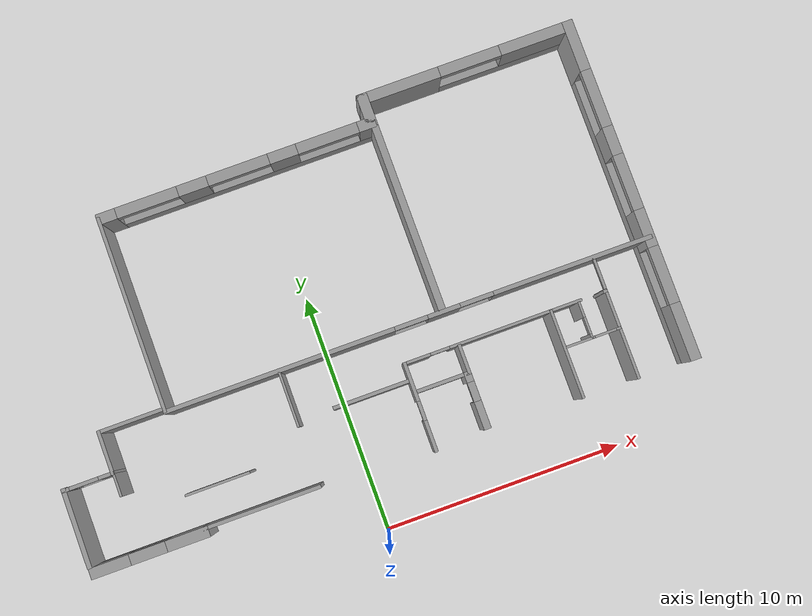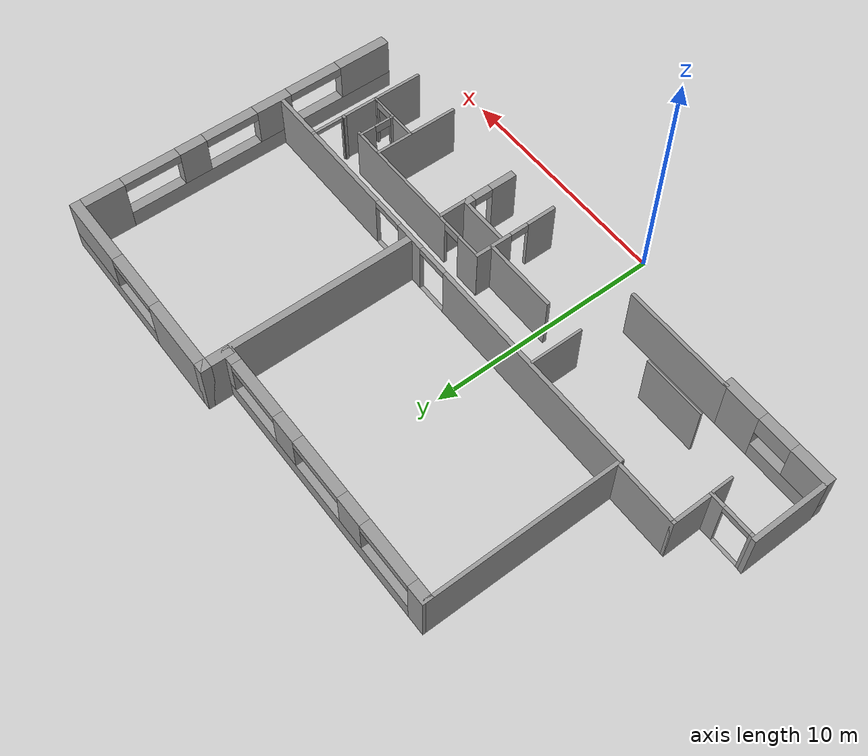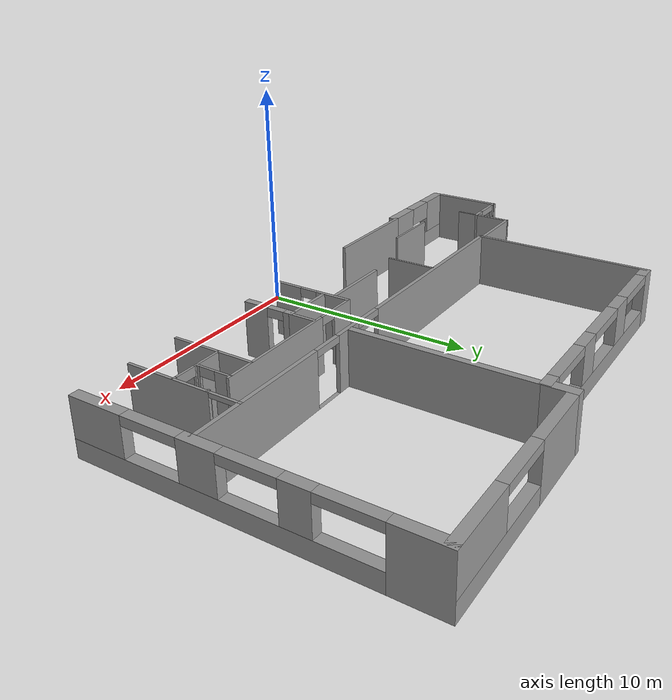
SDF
<sdf version="1.5">
 <model name="CentroPiaggio">
  <pose>1.2255 -0.6475 0 0 -0 0</pose>
  <link name="Wall_111">
   <pose>-2.0571 16.2258 0 0 -0 0</pose>
   <visual name="Wall_111_Visual_0">
    <pose>-5.4987 0 1.25 0 -0 0</pose>
    <geometry><box><size>0.802608 0.45 2.5</size></box></geometry>
    <material>
     <script><uri>file://media/materials/scripts/gazebo.material</uri><name>Gazebo/Grey</name></script>
     <ambient>1 1 1 1</ambient>
    </material>
   </visual>
   <collision name="Wall_111_Collision_0">
    <geometry><box><size>0.802608 0.45 2.5</size></box></geometry>
    <pose>-5.4987 0 1.25 0 -0 0</pose>
   </collision>
   <visual name="Wall_111_Visual_1">
    <pose>0.401304 0 0.4 0 -0 0</pose>
    <geometry><box><size>10.9974 0.45 0.8</size></box></geometry>
    <material>
     <script><uri>file://media/materials/scripts/gazebo.material</uri><name>Gazebo/Grey</name></script>
     <ambient>1 1 1 1</ambient>
    </material>
   </visual>
   <collision name="Wall_111_Collision_1">
    <geometry><box><size>10.9974 0.45 0.8</size></box></geometry>
    <pose>0.401304 0 0.4 0 -0 0</pose>
   </collision>
   <visual name="Wall_111_Visual_2">
    <pose>-1.86987 0 1.65 0 -0 0</pose>
    <geometry><box><size>1.25505 0.45 1.7</size></box></geometry>
    <material>
     <script><uri>file://media/materials/scripts/gazebo.material</uri><name>Gazebo/Grey</name></script>
     <ambient>1 1 1 1</ambient>
    </material>
   </visual>
   <collision name="Wall_111_Collision_2">
    <geometry><box><size>1.25505 0.45 1.7</size></box></geometry>
    <pose>-1.86987 0 1.65 0 -0 0</pose>
   </collision>
   <visual name="Wall_111_Visual_3">
    <pose>1.95631 0 1.65 0 -0 0</pose>
    <geometry><box><size>1.19731 0.45 1.7</size></box></geometry>
    <material>
     <script><uri>file://media/materials/scripts/gazebo.material</uri><name>Gazebo/Grey</name></script>
     <ambient>1 1 1 1</ambient>
    </material>
   </visual>
   <collision name="Wall_111_Collision_3">
    <geometry><box><size>1.19731 0.45 1.7</size></box></geometry>
    <pose>1.95631 0 1.65 0 -0 0</pose>
   </collision>
   <visual name="Wall_111_Visual_4">
    <pose>5.52748 0 1.65 0 -0 0</pose>
    <geometry><box><size>0.745034 0.45 1.7</size></box></geometry>
    <material>
     <script><uri>file://media/materials/scripts/gazebo.material</uri><name>Gazebo/Grey</name></script>
     <ambient>1 1 1 1</ambient>
    </material>
   </visual>
   <collision name="Wall_111_Collision_4">
    <geometry><box><size>0.745034 0.45 1.7</size></box></geometry>
    <pose>5.52748 0 1.65 0 -0 0</pose>
   </collision>
   <visual name="Wall_111_Visual_5">
    <pose>-3.79739 0 2.3 0 -0 0</pose>
    <geometry><box><size>2.6 0.45 0.4</size></box></geometry>
    <material>
     <script><uri>file://media/materials/scripts/gazebo.material</uri><name>Gazebo/Grey</name></script>
     <ambient>1 1 1 1</ambient>
    </material>
   </visual>
   <collision name="Wall_111_Collision_5">
    <geometry><box><size>2.6 0.45 0.4</size></box></geometry>
    <pose>-3.79739 0 2.3 0 -0 0</pose>
   </collision>
   <visual name="Wall_111_Visual_6">
    <pose>0.057654 0 2.3 0 -0 0</pose>
    <geometry><box><size>2.6 0.45 0.4</size></box></geometry>
    <material>
     <script><uri>file://media/materials/scripts/gazebo.material</uri><name>Gazebo/Grey</name></script>
     <ambient>1 1 1 1</ambient>
    </material>
   </visual>
   <collision name="Wall_111_Collision_6">
    <geometry><box><size>2.6 0.45 0.4</size></box></geometry>
    <pose>0.057654 0 2.3 0 -0 0</pose>
   </collision>
   <visual name="Wall_111_Visual_7">
    <pose>3.85497 0 2.3 0 -0 0</pose>
    <geometry><box><size>2.6 0.45 0.4</size></box></geometry>
    <material>
     <script><uri>file://media/materials/scripts/gazebo.material</uri><name>Gazebo/Grey</name></script>
     <ambient>1 1 1 1</ambient>
    </material>
   </visual>
   <collision name="Wall_111_Collision_7">
    <geometry><box><size>2.6 0.45 0.4</size></box></geometry>
    <pose>3.85497 0 2.3 0 -0 0</pose>
   </collision>
  </link>
  <link name="Wall_115">
   <collision name="Wall_115_Collision">
    <geometry><box><size>0.95 0.1 2.5</size></box></geometry>
    <pose>0 0 1.25 0 -0 0</pose>
   </collision>
   <visual name="Wall_115_Visual">
    <pose>0 0 1.25 0 -0 0</pose>
    <geometry><box><size>0.95 0.1 2.5</size></box></geometry>
    <material>
     <script><uri>file://media/materials/scripts/gazebo.material</uri><name>Gazebo/Grey</name></script>
     <ambient>1 1 1 1</ambient>
    </material>
   </visual>
   <pose>-10.5749 6.04761 0 0 0 -1.5708</pose>
  </link>
  <link name="Wall_118">
   <collision name="Wall_118_Collision">
    <geometry><box><size>2.7 0.1 2.5</size></box></geometry>
    <pose>0 0 1.25 0 -0 0</pose>
   </collision>
   <visual name="Wall_118_Visual">
    <pose>0 0 1.25 0 -0 0</pose>
    <geometry><box><size>2.7 0.1 2.5</size></box></geometry>
    <material>
     <script><uri>file://media/materials/scripts/gazebo.material</uri><name>Gazebo/Grey</name></script>
     <ambient>1 1 1 1</ambient>
    </material>
   </visual>
   <pose>-6.8715 4.75758 0 0 -0 0</pose>
  </link>
  <link name="Wall_120">
   <collision name="Wall_120_Collision">
    <geometry><box><size>2.3 0.1 2.5</size></box></geometry>
    <pose>0 0 1.25 0 -0 0</pose>
   </collision>
   <visual name="Wall_120_Visual">
    <pose>0 0 1.25 0 -0 0</pose>
    <geometry><box><size>2.3 0.1 2.5</size></box></geometry>
    <material>
     <script><uri>file://media/materials/scripts/gazebo.material</uri><name>Gazebo/Grey</name></script>
     <ambient>1 1 1 1</ambient>
    </material>
   </visual>
   <pose>-3.14357 6.91583 0 0 0 -1.5708</pose>
  </link>
  <link name="Wall_13">
   <collision name="Wall_13_Collision">
    <geometry><box><size>1.4 0.45 2.5</size></box></geometry>
    <pose>0 0 1.25 0 -0 0</pose>
   </collision>
   <visual name="Wall_13_Visual">
    <pose>0 0 1.25 0 -0 0</pose>
    <geometry><box><size>1.4 0.45 2.5</size></box></geometry>
    <material>
     <script><uri>file://media/materials/scripts/gazebo.material</uri><name>Gazebo/Grey</name></script>
     <ambient>1 1 1 1</ambient>
    </material>
   </visual>
   <pose>3.6745 16.7645 0 0 0 -1.5708</pose>
  </link>
  <link name="Wall_15">
   <pose>8.086 17.2395 0 0 -0 0</pose>
   <visual name="Wall_15_Visual_0">
    <pose>-2.89216 0 1.25 0 -0 0</pose>
    <geometry><box><size>3.48868 0.45 2.5</size></box></geometry>
    <material>
     <script><uri>file://media/materials/scripts/gazebo.material</uri><name>Gazebo/Grey</name></script>
     <ambient>1 1 1 1</ambient>
    </material>
   </visual>
   <collision name="Wall_15_Collision_0">
    <geometry><box><size>3.48868 0.45 2.5</size></box></geometry>
    <pose>-2.89216 0 1.25 0 -0 0</pose>
   </collision>
   <visual name="Wall_15_Visual_1">
    <pose>1.74434 0 0.4 0 -0 0</pose>
    <geometry><box><size>5.78432 0.45 0.8</size></box></geometry>
    <material>
     <script><uri>file://media/materials/scripts/gazebo.material</uri><name>Gazebo/Grey</name></script>
     <ambient>1 1 1 1</ambient>
    </material>
   </visual>
   <collision name="Wall_15_Collision_1">
    <geometry><box><size>5.78432 0.45 0.8</size></box></geometry>
    <pose>1.74434 0 0.4 0 -0 0</pose>
   </collision>
   <visual name="Wall_15_Visual_2">
    <pose>3.04434 0 1.65 0 -0 0</pose>
    <geometry><box><size>3.18432 0.45 1.7</size></box></geometry>
    <material>
     <script><uri>file://media/materials/scripts/gazebo.material</uri><name>Gazebo/Grey</name></script>
     <ambient>1 1 1 1</ambient>
    </material>
   </visual>
   <collision name="Wall_15_Collision_2">
    <geometry><box><size>3.18432 0.45 1.7</size></box></geometry>
    <pose>3.04434 0 1.65 0 -0 0</pose>
   </collision>
   <visual name="Wall_15_Visual_3">
    <pose>0.152181 0 2.3 0 -0 0</pose>
    <geometry><box><size>2.6 0.45 0.4</size></box></geometry>
    <material>
     <script><uri>file://media/materials/scripts/gazebo.material</uri><name>Gazebo/Grey</name></script>
     <ambient>1 1 1 1</ambient>
    </material>
   </visual>
   <collision name="Wall_15_Collision_3">
    <geometry><box><size>2.6 0.45 0.4</size></box></geometry>
    <pose>0.152181 0 2.3 0 -0 0</pose>
   </collision>
  </link>
  <link name="Wall_17">
   <pose>12.4975 10.1935 0 0 0 -1.5708</pose>
   <visual name="Wall_17_Visual_0">
    <pose>-6.19497 0 1.25 0 -0 0</pose>
    <geometry><box><size>2.15205 0.45 2.5</size></box></geometry>
    <material>
     <script><uri>file://media/materials/scripts/gazebo.material</uri><name>Gazebo/Grey</name></script>
     <ambient>1 1 1 1</ambient>
    </material>
   </visual>
   <collision name="Wall_17_Collision_0">
    <geometry><box><size>2.15205 0.45 2.5</size></box></geometry>
    <pose>-6.19497 0 1.25 0 -0 0</pose>
   </collision>
   <visual name="Wall_17_Visual_1">
    <pose>1.07603 0 0.4 0 -0 0</pose>
    <geometry><box><size>12.3899 0.45 0.8</size></box></geometry>
    <material>
     <script><uri>file://media/materials/scripts/gazebo.material</uri><name>Gazebo/Grey</name></script>
     <ambient>1 1 1 1</ambient>
    </material>
   </visual>
   <collision name="Wall_17_Collision_1">
    <geometry><box><size>12.3899 0.45 0.8</size></box></geometry>
    <pose>1.07603 0 0.4 0 -0 0</pose>
   </collision>
   <visual name="Wall_17_Visual_2">
    <pose>-2.06417 0 1.65 0 -0 0</pose>
    <geometry><box><size>1.20956 0.45 1.7</size></box></geometry>
    <material>
     <script><uri>file://media/materials/scripts/gazebo.material</uri><name>Gazebo/Grey</name></script>
     <ambient>1 1 1 1</ambient>
    </material>
   </visual>
   <collision name="Wall_17_Collision_2">
    <geometry><box><size>1.20956 0.45 1.7</size></box></geometry>
    <pose>-2.06417 0 1.65 0 -0 0</pose>
   </collision>
   <visual name="Wall_17_Visual_3">
    <pose>1.68935 0 1.65 0 -0 0</pose>
    <geometry><box><size>1.59598 0.45 1.7</size></box></geometry>
    <material>
     <script><uri>file://media/materials/scripts/gazebo.material</uri><name>Gazebo/Grey</name></script>
     <ambient>1 1 1 1</ambient>
    </material>
   </visual>
   <collision name="Wall_17_Collision_3">
    <geometry><box><size>1.59598 0.45 1.7</size></box></geometry>
    <pose>1.68935 0 1.65 0 -0 0</pose>
   </collision>
   <visual name="Wall_17_Visual_4">
    <pose>6.07917 0 1.65 0 -0 0</pose>
    <geometry><box><size>2.38366 0.45 1.7</size></box></geometry>
    <material>
     <script><uri>file://media/materials/scripts/gazebo.material</uri><name>Gazebo/Grey</name></script>
     <ambient>1 1 1 1</ambient>
    </material>
   </visual>
   <collision name="Wall_17_Collision_4">
    <geometry><box><size>2.38366 0.45 1.7</size></box></geometry>
    <pose>6.07917 0 1.65 0 -0 0</pose>
   </collision>
   <visual name="Wall_17_Visual_5">
    <pose>-3.89395 0 2.3 0 -0 0</pose>
    <geometry><box><size>2.45 0.45 0.4</size></box></geometry>
    <material>
     <script><uri>file://media/materials/scripts/gazebo.material</uri><name>Gazebo/Grey</name></script>
     <ambient>1 1 1 1</ambient>
    </material>
   </visual>
   <collision name="Wall_17_Collision_5">
    <geometry><box><size>2.45 0.45 0.4</size></box></geometry>
    <pose>-3.89395 0 2.3 0 -0 0</pose>
   </collision>
   <visual name="Wall_17_Visual_6">
    <pose>-0.284012 0 2.3 0 -0 0</pose>
    <geometry><box><size>2.35075 0.45 0.4</size></box></geometry>
    <material>
     <script><uri>file://media/materials/scripts/gazebo.material</uri><name>Gazebo/Grey</name></script>
     <ambient>1 1 1 1</ambient>
    </material>
   </visual>
   <collision name="Wall_17_Collision_6">
    <geometry><box><size>2.35075 0.45 0.4</size></box></geometry>
    <pose>-0.284012 0 2.3 0 -0 0</pose>
   </collision>
   <visual name="Wall_17_Visual_7">
    <pose>3.68735 0 2.3 0 -0 0</pose>
    <geometry><box><size>2.4 0.45 0.4</size></box></geometry>
    <material>
     <script><uri>file://media/materials/scripts/gazebo.material</uri><name>Gazebo/Grey</name></script>
     <ambient>1 1 1 1</ambient>
    </material>
   </visual>
   <collision name="Wall_17_Collision_7">
    <geometry><box><size>2.4 0.45 0.4</size></box></geometry>
    <pose>3.68735 0 2.3 0 -0 0</pose>
   </collision>
  </link>
  <link name="Wall_31">
   <pose>-10.2415 3.1475 0 0 -0 3.14159</pose>
   <visual name="Wall_31_Visual_0">
    <pose>-1.57559 0 1.25 0 -0 0</pose>
    <geometry><box><size>1.76683 0.45 2.5</size></box></geometry>
    <material>
     <script><uri>file://media/materials/scripts/gazebo.material</uri><name>Gazebo/Grey</name></script>
     <ambient>1 1 1 1</ambient>
    </material>
   </visual>
   <collision name="Wall_31_Collision_0">
    <geometry><box><size>1.76683 0.45 2.5</size></box></geometry>
    <pose>-1.57559 0 1.25 0 -0 0</pose>
   </collision>
   <visual name="Wall_31_Visual_1">
    <pose>0.883413 0 0.4 0 -0 0</pose>
    <geometry><box><size>3.15117 0.45 0.8</size></box></geometry>
    <material>
     <script><uri>file://media/materials/scripts/gazebo.material</uri><name>Gazebo/Grey</name></script>
     <ambient>1 1 1 1</ambient>
    </material>
   </visual>
   <collision name="Wall_31_Collision_1">
    <geometry><box><size>3.15117 0.45 0.8</size></box></geometry>
    <pose>0.883413 0 0.4 0 -0 0</pose>
   </collision>
   <visual name="Wall_31_Visual_2">
    <pose>1.63341 0 1.65 0 -0 0</pose>
    <geometry><box><size>1.65117 0.45 1.7</size></box></geometry>
    <material>
     <script><uri>file://media/materials/scripts/gazebo.material</uri><name>Gazebo/Grey</name></script>
     <ambient>1 1 1 1</ambient>
    </material>
   </visual>
   <collision name="Wall_31_Collision_2">
    <geometry><box><size>1.65117 0.45 1.7</size></box></geometry>
    <pose>1.63341 0 1.65 0 -0 0</pose>
   </collision>
   <visual name="Wall_31_Visual_3">
    <pose>0.057827 0 2.05 0 -0 0</pose>
    <geometry><box><size>1.5 0.45 0.9</size></box></geometry>
    <material>
     <script><uri>file://media/materials/scripts/gazebo.material</uri><name>Gazebo/Grey</name></script>
     <ambient>1 1 1 1</ambient>
    </material>
   </visual>
   <collision name="Wall_31_Collision_3">
    <geometry><box><size>1.5 0.45 0.9</size></box></geometry>
    <pose>0.057827 0 2.05 0 -0 0</pose>
   </collision>
  </link>
  <link name="Wall_34">
   <collision name="Wall_34_Collision">
    <geometry><box><size>3.29965 0.2 2.5</size></box></geometry>
    <pose>0 0 1.25 0 -0 0</pose>
   </collision>
   <visual name="Wall_34_Visual">
    <pose>0 0 1.25 0 -0 0</pose>
    <geometry><box><size>3.29965 0.2 2.5</size></box></geometry>
    <material>
     <script><uri>file://media/materials/scripts/gazebo.material</uri><name>Gazebo/Grey</name></script>
     <ambient>1 1 1 1</ambient>
    </material>
   </visual>
   <pose>-12.6225 5.0035 0 0 0 -1.5708</pose>
  </link>
  <link name="Wall_36">
   <pose>-11.6115 6.5535 0 0 -0 0</pose>
   <visual name="Wall_36_Visual_0">
    <pose>-0.934198 0 1.25 0 -0 0</pose>
    <geometry><box><size>0.303882 0.15 2.5</size></box></geometry>
    <material>
     <script><uri>file://media/materials/scripts/gazebo.material</uri><name>Gazebo/Grey</name></script>
     <ambient>1 1 1 1</ambient>
    </material>
   </visual>
   <collision name="Wall_36_Collision_0">
    <geometry><box><size>0.303882 0.15 2.5</size></box></geometry>
    <pose>-0.934198 0 1.25 0 -0 0</pose>
   </collision>
   <visual name="Wall_36_Visual_1">
    <pose>0.751941 0 1.25 0 -0 0</pose>
    <geometry><box><size>0.668397 0.15 2.5</size></box></geometry>
    <material>
     <script><uri>file://media/materials/scripts/gazebo.material</uri><name>Gazebo/Grey</name></script>
     <ambient>1 1 1 1</ambient>
    </material>
   </visual>
   <collision name="Wall_36_Collision_1">
    <geometry><box><size>0.668397 0.15 2.5</size></box></geometry>
    <pose>0.751941 0 1.25 0 -0 0</pose>
   </collision>
   <visual name="Wall_36_Visual_2">
    <pose>-0.182258 0 0 0 -0 0</pose>
    <geometry><box><size>1.2 0.15 0</size></box></geometry>
    <material>
     <script><uri>file://media/materials/scripts/gazebo.material</uri><name>Gazebo/Grey</name></script>
     <ambient>1 1 1 1</ambient>
    </material>
   </visual>
   <collision name="Wall_36_Collision_2">
    <geometry><box><size>1.2 0.15 0</size></box></geometry>
    <pose>-0.182258 0 0 0 -0 0</pose>
   </collision>
   <visual name="Wall_36_Visual_3">
    <pose>-0.182258 0 2.35 0 -0 0</pose>
    <geometry><box><size>1.2 0.15 0.3</size></box></geometry>
    <material>
     <script><uri>file://media/materials/scripts/gazebo.material</uri><name>Gazebo/Grey</name></script>
     <ambient>1 1 1 1</ambient>
    </material>
   </visual>
   <collision name="Wall_36_Collision_3">
    <geometry><box><size>1.2 0.15 0.3</size></box></geometry>
    <pose>-0.182258 0 2.35 0 -0 0</pose>
   </collision>
  </link>
  <link name="Wall_39">
   <collision name="Wall_39_Collision">
    <geometry><box><size>1.844 0.15 2.5</size></box></geometry>
    <pose>0 0 1.25 0 -0 0</pose>
   </collision>
   <visual name="Wall_39_Visual">
    <pose>0 0 1.25 0 -0 0</pose>
    <geometry><box><size>1.844 0.15 2.5</size></box></geometry>
    <material>
     <script><uri>file://media/materials/scripts/gazebo.material</uri><name>Gazebo/Grey</name></script>
     <ambient>1 1 1 1</ambient>
    </material>
   </visual>
   <pose>-10.6005 7.4005 0 0 -0 1.5708</pose>
  </link>
  <link name="Wall_42">
   <collision name="Wall_42_Collision">
    <geometry><box><size>2.725 0.15 2.5</size></box></geometry>
    <pose>0 0 1.25 0 -0 0</pose>
   </collision>
   <visual name="Wall_42_Visual">
    <pose>0 0 1.25 0 -0 0</pose>
    <geometry><box><size>2.725 0.15 2.5</size></box></geometry>
    <material>
     <script><uri>file://media/materials/scripts/gazebo.material</uri><name>Gazebo/Grey</name></script>
     <ambient>1 1 1 1</ambient>
    </material>
   </visual>
   <pose>-9.313 8.2475 0 0 -0 0</pose>
  </link>
  <link name="Wall_46">
   <collision name="Wall_46_Collision">
    <geometry><box><size>8.25 0.15 2.5</size></box></geometry>
    <pose>0 0 1.25 0 -0 0</pose>
   </collision>
   <visual name="Wall_46_Visual">
    <pose>0 0 1.25 0 -0 0</pose>
    <geometry><box><size>8.25 0.15 2.5</size></box></geometry>
    <material>
     <script><uri>file://media/materials/scripts/gazebo.material</uri><name>Gazebo/Grey</name></script>
     <ambient>1 1 1 1</ambient>
    </material>
   </visual>
   <pose>-7.88344 12.1974 0 0 0 -1.5708</pose>
  </link>
  <link name="Wall_48">
   <collision name="Wall_48_Collision">
    <geometry><box><size>7.9 0.3 2.5</size></box></geometry>
    <pose>0 0 1.25 0 -0 0</pose>
   </collision>
   <visual name="Wall_48_Visual">
    <pose>0 0 1.25 0 -0 0</pose>
    <geometry><box><size>7.9 0.3 2.5</size></box></geometry>
    <material>
     <script><uri>file://media/materials/scripts/gazebo.material</uri><name>Gazebo/Grey</name></script>
     <ambient>1 1 1 1</ambient>
    </material>
   </visual>
   <pose>3.75 12.1271 0 0 0 -1.5708</pose>
  </link>
  <link name="Wall_50">
   <pose>2.3279 8.11343 0 0 -0 0</pose>
   <visual name="Wall_50_Visual_0">
    <pose>-5.44535 0 1.25 0 -0 0</pose>
    <geometry><box><size>9.68131 0.18 2.5</size></box></geometry>
    <material>
     <script><uri>file://media/materials/scripts/gazebo.material</uri><name>Gazebo/Grey</name></script>
     <ambient>1 1 1 1</ambient>
    </material>
   </visual>
   <collision name="Wall_50_Collision_0">
    <geometry><box><size>9.68131 0.18 2.5</size></box></geometry>
    <pose>-5.44535 0 1.25 0 -0 0</pose>
   </collision>
   <visual name="Wall_50_Visual_1">
    <pose>1.47589 0 1.25 0 -0 0</pose>
    <geometry><box><size>1.36118 0.18 2.5</size></box></geometry>
    <material>
     <script><uri>file://media/materials/scripts/gazebo.material</uri><name>Gazebo/Grey</name></script>
     <ambient>1 1 1 1</ambient>
    </material>
   </visual>
   <collision name="Wall_50_Collision_1">
    <geometry><box><size>1.36118 0.18 2.5</size></box></geometry>
    <pose>1.47589 0 1.25 0 -0 0</pose>
   </collision>
   <visual name="Wall_50_Visual_2">
    <pose>6.92124 0 1.25 0 -0 0</pose>
    <geometry><box><size>6.72952 0.18 2.5</size></box></geometry>
    <material>
     <script><uri>file://media/materials/scripts/gazebo.material</uri><name>Gazebo/Grey</name></script>
     <ambient>1 1 1 1</ambient>
    </material>
   </visual>
   <collision name="Wall_50_Collision_2">
    <geometry><box><size>6.72952 0.18 2.5</size></box></geometry>
    <pose>6.92124 0 1.25 0 -0 0</pose>
   </collision>
   <visual name="Wall_50_Visual_3">
    <pose>0.095306 0 0 0 -0 0</pose>
    <geometry><box><size>1.4 0.18 0</size></box></geometry>
    <material>
     <script><uri>file://media/materials/scripts/gazebo.material</uri><name>Gazebo/Grey</name></script>
     <ambient>1 1 1 1</ambient>
    </material>
   </visual>
   <collision name="Wall_50_Collision_3">
    <geometry><box><size>1.4 0.18 0</size></box></geometry>
    <pose>0.095306 0 0 0 -0 0</pose>
   </collision>
   <visual name="Wall_50_Visual_4">
    <pose>2.85648 0 0 0 -0 0</pose>
    <geometry><box><size>1.4 0.18 0</size></box></geometry>
    <material>
     <script><uri>file://media/materials/scripts/gazebo.material</uri><name>Gazebo/Grey</name></script>
     <ambient>1 1 1 1</ambient>
    </material>
   </visual>
   <collision name="Wall_50_Collision_4">
    <geometry><box><size>1.4 0.18 0</size></box></geometry>
    <pose>2.85648 0 0 0 -0 0</pose>
   </collision>
   <visual name="Wall_50_Visual_5">
    <pose>0.095306 0 2.35 0 -0 0</pose>
    <geometry><box><size>1.4 0.18 0.3</size></box></geometry>
    <material>
     <script><uri>file://media/materials/scripts/gazebo.material</uri><name>Gazebo/Grey</name></script>
     <ambient>1 1 1 1</ambient>
    </material>
   </visual>
   <collision name="Wall_50_Collision_5">
    <geometry><box><size>1.4 0.18 0.3</size></box></geometry>
    <pose>0.095306 0 2.35 0 -0 0</pose>
   </collision>
   <visual name="Wall_50_Visual_6">
    <pose>2.85648 0 2.35 0 -0 0</pose>
    <geometry><box><size>1.4 0.18 0.3</size></box></geometry>
    <material>
     <script><uri>file://media/materials/scripts/gazebo.material</uri><name>Gazebo/Grey</name></script>
     <ambient>1 1 1 1</ambient>
    </material>
   </visual>
   <collision name="Wall_50_Collision_6">
    <geometry><box><size>1.4 0.18 0.3</size></box></geometry>
    <pose>2.85648 0 2.35 0 -0 0</pose>
   </collision>
  </link>
  <link name="Wall_52">
   <pose>5.864 6.6865 0 0 -0 0</pose>
   <visual name="Wall_52_Visual_0">
    <pose>-3.73062 0 1.25 0 -0 0</pose>
    <geometry><box><size>1.15976 0.12 2.5</size></box></geometry>
    <material>
     <script><uri>file://media/materials/scripts/gazebo.material</uri><name>Gazebo/Grey</name></script>
     <ambient>1 1 1 1</ambient>
    </material>
   </visual>
   <collision name="Wall_52_Collision_0">
    <geometry><box><size>1.15976 0.12 2.5</size></box></geometry>
    <pose>-3.73062 0 1.25 0 -0 0</pose>
   </collision>
   <visual name="Wall_52_Visual_1">
    <pose>0.441882 0 1.25 0 -0 0</pose>
    <geometry><box><size>5.58524 0.12 2.5</size></box></geometry>
    <material>
     <script><uri>file://media/materials/scripts/gazebo.material</uri><name>Gazebo/Grey</name></script>
     <ambient>1 1 1 1</ambient>
    </material>
   </visual>
   <collision name="Wall_52_Collision_1">
    <geometry><box><size>5.58524 0.12 2.5</size></box></geometry>
    <pose>0.441882 0 1.25 0 -0 0</pose>
   </collision>
   <visual name="Wall_52_Visual_2">
    <pose>4.2225 0 1.25 0 -0 0</pose>
    <geometry><box><size>0.176 0.12 2.5</size></box></geometry>
    <material>
     <script><uri>file://media/materials/scripts/gazebo.material</uri><name>Gazebo/Grey</name></script>
     <ambient>1 1 1 1</ambient>
    </material>
   </visual>
   <collision name="Wall_52_Collision_2">
    <geometry><box><size>0.176 0.12 2.5</size></box></geometry>
    <pose>4.2225 0 1.25 0 -0 0</pose>
   </collision>
   <visual name="Wall_52_Visual_3">
    <pose>-2.75074 0 2.3 0 -0 0</pose>
    <geometry><box><size>0.8 0.12 0.4</size></box></geometry>
    <material>
     <script><uri>file://media/materials/scripts/gazebo.material</uri><name>Gazebo/Grey</name></script>
     <ambient>1 1 1 1</ambient>
    </material>
   </visual>
   <collision name="Wall_52_Collision_3">
    <geometry><box><size>0.8 0.12 0.4</size></box></geometry>
    <pose>-2.75074 0 2.3 0 -0 0</pose>
   </collision>
  </link>
  <link name="Wall_57">
   <collision name="Wall_57_Collision">
    <geometry><box><size>3.72 0.12 2.5</size></box></geometry>
    <pose>0 0 1.25 0 -0 0</pose>
   </collision>
   <visual name="Wall_57_Visual">
    <pose>0 0 1.25 0 -0 0</pose>
    <geometry><box><size>3.72 0.12 2.5</size></box></geometry>
    <material>
     <script><uri>file://media/materials/scripts/gazebo.material</uri><name>Gazebo/Grey</name></script>
     <ambient>1 1 1 1</ambient>
    </material>
   </visual>
   <pose>7.78998 4.85973 0 0 0 -1.5708</pose>
  </link>
  <link name="Wall_59">
   <pose>10.1148 5.59068 0 0 0 -1.5708</pose>
   <visual name="Wall_59_Visual_0">
    <pose>-2.52348 0 1.25 0 -0 0</pose>
    <geometry><box><size>0.173039 0.12 2.5</size></box></geometry>
    <material>
     <script><uri>file://media/materials/scripts/gazebo.material</uri><name>Gazebo/Grey</name></script>
     <ambient>1 1 1 1</ambient>
    </material>
   </visual>
   <collision name="Wall_59_Collision_0">
    <geometry><box><size>0.173039 0.12 2.5</size></box></geometry>
    <pose>-2.52348 0 1.25 0 -0 0</pose>
   </collision>
   <visual name="Wall_59_Visual_1">
    <pose>0.71152 0 1.25 0 -0 0</pose>
    <geometry><box><size>3.79696 0.12 2.5</size></box></geometry>
    <material>
     <script><uri>file://media/materials/scripts/gazebo.material</uri><name>Gazebo/Grey</name></script>
     <ambient>1 1 1 1</ambient>
    </material>
   </visual>
   <collision name="Wall_59_Collision_1">
    <geometry><box><size>3.79696 0.12 2.5</size></box></geometry>
    <pose>0.71152 0 1.25 0 -0 0</pose>
   </collision>
   <visual name="Wall_59_Visual_2">
    <pose>-1.81196 0 2.4 0 -0 0</pose>
    <geometry><box><size>1.25 0.12 0.2</size></box></geometry>
    <material>
     <script><uri>file://media/materials/scripts/gazebo.material</uri><name>Gazebo/Grey</name></script>
     <ambient>1 1 1 1</ambient>
    </material>
   </visual>
   <collision name="Wall_59_Collision_2">
    <geometry><box><size>1.25 0.12 0.2</size></box></geometry>
    <pose>-1.81196 0 2.4 0 -0 0</pose>
   </collision>
  </link>
  <link name="Wall_61">
   <pose>8.9425 5.907 0 0 0 -1.5708</pose>
   <visual name="Wall_61_Visual_0">
    <pose>-0.458465 0 1.25 0 -0 0</pose>
    <geometry><box><size>0.742069 0.1 2.5</size></box></geometry>
    <material>
     <script><uri>file://media/materials/scripts/gazebo.material</uri><name>Gazebo/Grey</name></script>
     <ambient>1 1 1 1</ambient>
    </material>
   </visual>
   <collision name="Wall_61_Collision_0">
    <geometry><box><size>0.742069 0.1 2.5</size></box></geometry>
    <pose>-0.458465 0 1.25 0 -0 0</pose>
   </collision>
   <visual name="Wall_61_Visual_1">
    <pose>0.721035 0 1.25 0 -0 0</pose>
    <geometry><box><size>0.216931 0.1 2.5</size></box></geometry>
    <material>
     <script><uri>file://media/materials/scripts/gazebo.material</uri><name>Gazebo/Grey</name></script>
     <ambient>1 1 1 1</ambient>
    </material>
   </visual>
   <collision name="Wall_61_Collision_1">
    <geometry><box><size>0.216931 0.1 2.5</size></box></geometry>
    <pose>0.721035 0 1.25 0 -0 0</pose>
   </collision>
   <visual name="Wall_61_Visual_2">
    <pose>0.262569 0 2.3 0 -0 0</pose>
    <geometry><box><size>0.7 0.1 0.4</size></box></geometry>
    <material>
     <script><uri>file://media/materials/scripts/gazebo.material</uri><name>Gazebo/Grey</name></script>
     <ambient>1 1 1 1</ambient>
    </material>
   </visual>
   <collision name="Wall_61_Collision_2">
    <geometry><box><size>0.7 0.1 0.4</size></box></geometry>
    <pose>0.262569 0 2.3 0 -0 0</pose>
   </collision>
  </link>
  <link name="Wall_64">
   <pose>8.95407 5.12474 0 0 -0 0</pose>
   <visual name="Wall_64_Visual_0">
    <pose>-0.544854 0 1.25 0 -0 0</pose>
    <geometry><box><size>1.31129 0.1 2.5</size></box></geometry>
    <material>
     <script><uri>file://media/materials/scripts/gazebo.material</uri><name>Gazebo/Grey</name></script>
     <ambient>1 1 1 1</ambient>
    </material>
   </visual>
   <collision name="Wall_64_Collision_0">
    <geometry><box><size>1.31129 0.1 2.5</size></box></geometry>
    <pose>-0.544854 0 1.25 0 -0 0</pose>
   </collision>
   <visual name="Wall_64_Visual_1">
    <pose>1.10565 0 1.25 0 -0 0</pose>
    <geometry><box><size>0.189709 0.1 2.5</size></box></geometry>
    <material>
     <script><uri>file://media/materials/scripts/gazebo.material</uri><name>Gazebo/Grey</name></script>
     <ambient>1 1 1 1</ambient>
    </material>
   </visual>
   <collision name="Wall_64_Collision_1">
    <geometry><box><size>0.189709 0.1 2.5</size></box></geometry>
    <pose>1.10565 0 1.25 0 -0 0</pose>
   </collision>
   <visual name="Wall_64_Visual_2">
    <pose>0.560791 0 2.3 0 -0 0</pose>
    <geometry><box><size>0.9 0.1 0.4</size></box></geometry>
    <material>
     <script><uri>file://media/materials/scripts/gazebo.material</uri><name>Gazebo/Grey</name></script>
     <ambient>1 1 1 1</ambient>
    </material>
   </visual>
   <collision name="Wall_64_Collision_2">
    <geometry><box><size>0.9 0.1 0.4</size></box></geometry>
    <pose>0.560791 0 2.3 0 -0 0</pose>
   </collision>
  </link>
  <link name="Wall_66">
   <pose>1.62638 4.871 0 0 0 -1.5708</pose>
   <visual name="Wall_66_Visual_0">
    <pose>-1.05927 0 1.25 0 -0 0</pose>
    <geometry><box><size>1.63146 0.15 2.5</size></box></geometry>
    <material>
     <script><uri>file://media/materials/scripts/gazebo.material</uri><name>Gazebo/Grey</name></script>
     <ambient>1 1 1 1</ambient>
    </material>
   </visual>
   <collision name="Wall_66_Collision_0">
    <geometry><box><size>1.63146 0.15 2.5</size></box></geometry>
    <pose>-1.05927 0 1.25 0 -0 0</pose>
   </collision>
   <visual name="Wall_66_Visual_1">
    <pose>1.21573 0 1.25 0 -0 0</pose>
    <geometry><box><size>1.31854 0.15 2.5</size></box></geometry>
    <material>
     <script><uri>file://media/materials/scripts/gazebo.material</uri><name>Gazebo/Grey</name></script>
     <ambient>1 1 1 1</ambient>
    </material>
   </visual>
   <collision name="Wall_66_Collision_1">
    <geometry><box><size>1.31854 0.15 2.5</size></box></geometry>
    <pose>1.21573 0 1.25 0 -0 0</pose>
   </collision>
   <visual name="Wall_66_Visual_2">
    <pose>0.156459 0 2.3 0 -0 0</pose>
    <geometry><box><size>0.8 0.15 0.4</size></box></geometry>
    <material>
     <script><uri>file://media/materials/scripts/gazebo.material</uri><name>Gazebo/Grey</name></script>
     <ambient>1 1 1 1</ambient>
    </material>
   </visual>
   <collision name="Wall_66_Collision_2">
    <geometry><box><size>0.8 0.15 0.4</size></box></geometry>
    <pose>0.156459 0 2.3 0 -0 0</pose>
   </collision>
  </link>
  <link name="Wall_68">
   <pose>3.82344 4.36322 0 0 -0 1.5708</pose>
   <visual name="Wall_68_Visual_0">
    <pose>-0.616775 0 1.25 0 -0 0</pose>
    <geometry><box><size>1.16645 0.3 2.5</size></box></geometry>
    <material>
     <script><uri>file://media/materials/scripts/gazebo.material</uri><name>Gazebo/Grey</name></script>
     <ambient>1 1 1 1</ambient>
    </material>
   </visual>
   <collision name="Wall_68_Collision_0">
    <geometry><box><size>1.16645 0.3 2.5</size></box></geometry>
    <pose>-0.616775 0 1.25 0 -0 0</pose>
   </collision>
   <visual name="Wall_68_Visual_1">
    <pose>0.983225 0 1.25 0 -0 0</pose>
    <geometry><box><size>0.43355 0.3 2.5</size></box></geometry>
    <material>
     <script><uri>file://media/materials/scripts/gazebo.material</uri><name>Gazebo/Grey</name></script>
     <ambient>1 1 1 1</ambient>
    </material>
   </visual>
   <collision name="Wall_68_Collision_1">
    <geometry><box><size>0.43355 0.3 2.5</size></box></geometry>
    <pose>0.983225 0 1.25 0 -0 0</pose>
   </collision>
   <visual name="Wall_68_Visual_2">
    <pose>0.36645 0 2.3 0 -0 0</pose>
    <geometry><box><size>0.8 0.3 0.4</size></box></geometry>
    <material>
     <script><uri>file://media/materials/scripts/gazebo.material</uri><name>Gazebo/Grey</name></script>
     <ambient>1 1 1 1</ambient>
    </material>
   </visual>
   <collision name="Wall_68_Collision_2">
    <geometry><box><size>0.8 0.3 0.4</size></box></geometry>
    <pose>0.36645 0 2.3 0 -0 0</pose>
   </collision>
  </link>
  <link name="Wall_70">
   <collision name="Wall_70_Collision">
    <geometry><box><size>1.25 0.14 2.5</size></box></geometry>
    <pose>0 0 1.25 0 -0 0</pose>
   </collision>
   <visual name="Wall_70_Visual">
    <pose>0 0 1.25 0 -0 0</pose>
    <geometry><box><size>1.25 0.14 2.5</size></box></geometry>
    <material>
     <script><uri>file://media/materials/scripts/gazebo.material</uri><name>Gazebo/Grey</name></script>
     <ambient>1 1 1 1</ambient>
    </material>
   </visual>
   <pose>3.90358 6.04398 0 0 0 -1.5708</pose>
  </link>
  <link name="Wall_72">
   <collision name="Wall_72_Collision">
    <geometry><box><size>2.25 0.15 2.5</size></box></geometry>
    <pose>0 0 1.25 0 -0 0</pose>
   </collision>
   <visual name="Wall_72_Visual">
    <pose>0 0 1.25 0 -0 0</pose>
    <geometry><box><size>2.25 0.15 2.5</size></box></geometry>
    <material>
     <script><uri>file://media/materials/scripts/gazebo.material</uri><name>Gazebo/Grey</name></script>
     <ambient>1 1 1 1</ambient>
    </material>
   </visual>
   <pose>2.741 5.49132 0 0 -0 0</pose>
  </link>
  <link name="Wall_77">
   <collision name="Wall_77_Collision">
    <geometry><box><size>3.278 0.15 2.5</size></box></geometry>
    <pose>0 0 1.25 0 -0 0</pose>
   </collision>
   <visual name="Wall_77_Visual">
    <pose>0 0 1.25 0 -0 0</pose>
    <geometry><box><size>3.278 0.15 2.5</size></box></geometry>
    <material>
     <script><uri>file://media/materials/scripts/gazebo.material</uri><name>Gazebo/Grey</name></script>
     <ambient>1 1 1 1</ambient>
    </material>
   </visual>
   <pose>0.015825 5.99576 0 0 -0 0</pose>
  </link>
  <link name="Wall_91">
   <collision name="Wall_91_Collision">
    <geometry><box><size>4.9 0.15 2.5</size></box></geometry>
    <pose>0 0 1.25 0 -0 0</pose>
   </collision>
   <visual name="Wall_91_Visual">
    <pose>0 0 1.25 0 -0 0</pose>
    <geometry><box><size>4.9 0.15 2.5</size></box></geometry>
    <material>
     <script><uri>file://media/materials/scripts/gazebo.material</uri><name>Gazebo/Grey</name></script>
     <ambient>1 1 1 1</ambient>
    </material>
   </visual>
   <pose>-5.53618 3.29772 0 0 -0 0</pose>
  </link>
  <static>1</static>
 </model>
</sdf>
